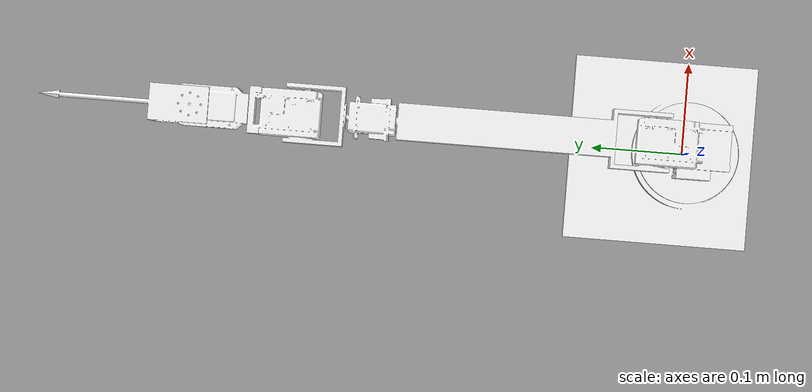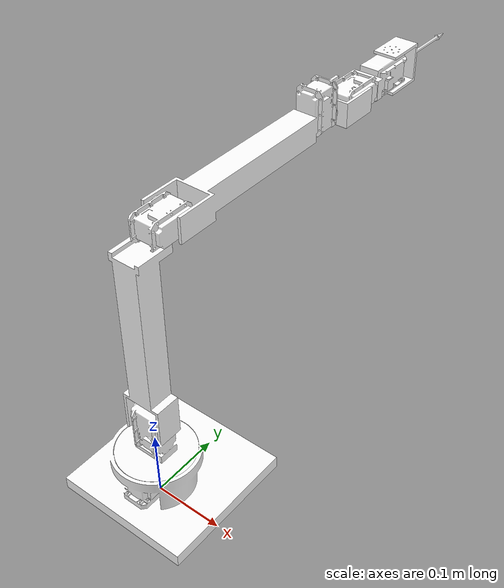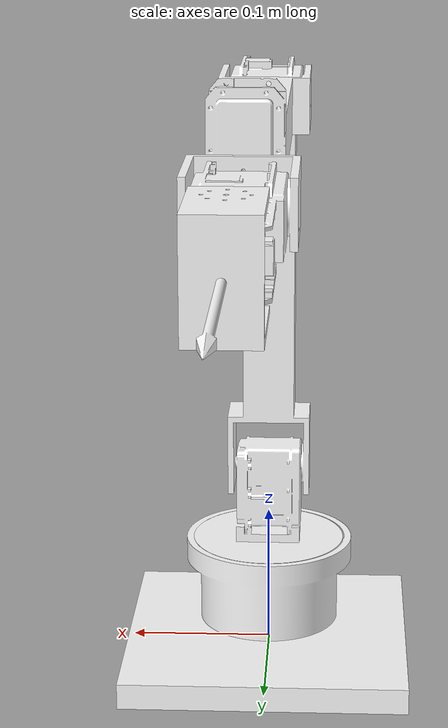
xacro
<?xml version="1.0" ?>

<robot name="mrm" xmlns:xacro="http://www.ros.org/wiki/xacro">

  <!-- BGN - Include -->

  <xacro:include filename="$(find mx106)/urdf/links_joints.xacro" />
  <!-- END - Include -->

  <!-- BGN - Robot description  -->

 <material name="white">
   <color rgba="1 1 1 1"/>
 </material>

  <m_link_mesh name="Base"
              origin_rpy="1.57 0 0" origin_xyz="0 0 0"
              mass="157.633"
              ixx="13.235" ixy="0" ixz="0"
              iyy="13.235" iyz="0"
              izz="9.655"
              meshfile="package://mx106/meshes/0base.stl"
              meshscale="0.001 0.001 0.001" />

  <m_joint name="Rotate" type="revolute"
           axis_xyz="0 0 1"
           origin_rpy="0 0 0" origin_xyz="0 0 0.0753"
           parent="Base" child="link_01"
           limit_e="1000" limit_l="-3.14" limit_u="3.14" limit_v="0.5" />

  <m_link_mesh name="link_01"
              origin_rpy="1.57 0 0" origin_xyz="0 0 0"
              mass="157.633"
              ixx="13.235" ixy="0" ixz="0"
              iyy="13.235" iyz="0"
              izz="9.655"
              meshfile="package://mx106/meshes/1rotate.stl"
              meshscale="0.001 0.001 0.001" />

    <m_joint name="Rotate1" type="revolute"
           axis_xyz="1 0 0"
           origin_rpy="0 0 0" origin_xyz="0 0 0.0616"
           parent="link_01" child="link_02"
           limit_e="1000" limit_l="-3.14" limit_u="3.14" limit_v="0.5" />

  <m_link_mesh name="link_02"
              origin_rpy="1.57 0 0" origin_xyz="0 0 -0.018"
              mass="157.633"
              ixx="13.235" ixy="0" ixz="0"
              iyy="13.235" iyz="0"
              izz="9.655"
              meshfile="package://mx106/meshes/2branch.stl"
              meshscale="0.001 0.001 0.001" />

    <m_joint name="Rotate2" type="revolute"
           axis_xyz="1 0 0"
           origin_rpy="0 0 0" origin_xyz="0 0.062 0.2761"
           parent="link_02" child="link_03"
           limit_e="1000" limit_l="-3.14" limit_u="3.14" limit_v="0.5" />

  <m_link_mesh name="link_03"
              origin_rpy="1.57 0 0" origin_xyz="0 -0.018 -0.018"
              mass="157.633"
              ixx="13.235" ixy="0" ixz="0"
              iyy="13.235" iyz="0"
              izz="9.655"
              meshfile="package://mx106/meshes/3branch.stl"
              meshscale="0.001 0.001 0.001" />

    <m_joint name="Rotate3" type="revolute"
           axis_xyz="0 1 0"
           origin_rpy="0 0 0" origin_xyz="0 0.3006 0"
           parent="link_03" child="link_04"
           limit_e="1000" limit_l="-3.14" limit_u="3.14" limit_v="0.5" />

  <m_link_mesh name="link_04"
              origin_rpy="1.57 0 0" origin_xyz="0 0 -0.018"
              mass="157.633"
              ixx="13.235" ixy="0" ixz="0"
              iyy="13.235" iyz="0"
              izz="9.655"
              meshfile="package://mx106/meshes/4rotate.stl"
              meshscale="0.001 0.001 0.001" />

    <m_joint name="Rotate4" type="revolute"
           axis_xyz="1 0 0"
           origin_rpy="0 0 0" origin_xyz="0 0.0391 0"
           parent="link_04" child="link_05"
           limit_e="1000" limit_l="-3.14" limit_u="3.14" limit_v="0.5" />

  <m_link_mesh name="link_05"
              origin_rpy="1.57 0 0" origin_xyz="0 -0.0145 -0.023"
              mass="157.633"
              ixx="13.235" ixy="0" ixz="0"
              iyy="13.235" iyz="0"
              izz="9.655"
              meshfile="package://mx106/meshes/5axis.stl"
              meshscale="0.001 0.001 0.001" />

    <m_joint name="Rotate5" type="revolute"
           axis_xyz="0 0 1"
           origin_rpy="0 0 0" origin_xyz="0 0.1132 0"
           parent="link_05" child="link_06"
           limit_e="1000" limit_l="-3.14" limit_u="3.14" limit_v="0.5" />

  <m_link_mesh name="link_06"
              origin_rpy="1.57 0 0" origin_xyz="0 -0.018 -0.029"
              mass="157.633"
              ixx="13.235" ixy="0" ixz="0"
              iyy="13.235" iyz="0"
              izz="9.655"
              meshfile="package://mx106/meshes/6brush.stl"
              meshscale="0.001 0.001 0.001" />
  <!-- END - Robot description -->

  <gazebo>
    <plugin name="gazebo_ros_control" filename="libgazebo_ros_control.so">
    </plugin>
  </gazebo>

</robot>

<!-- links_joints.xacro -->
<robot xmlns:xacro="http://www.ros.org/wiki/xacro">

  <xacro:macro name="m_joint" params="name type axis_xyz origin_rpy origin_xyz parent child limit_e limit_l limit_u limit_v">
    <joint name="${name}" type="${type}">
      <axis xyz="${axis_xyz}" />
      <limit effort="${limit_e}" lower="${limit_l}" upper="${limit_u}" velocity="${limit_v}" />
      <origin rpy="${origin_rpy}" xyz="${origin_xyz}" />
      <parent link="${parent}" />
      <child link="${child}" />
    </joint>
    <transmission name="trans_${name}">
      <type>transmission_interface/SimpleTransmission</type>
      <joint name="${name}">
        <hardwareInterface>hardware_interface/EffortJointInterface</hardwareInterface>
      </joint>
      <actuator name="motor_${name}">
        <hardwareInterface>hardware_interface/EffortJointInterface</hardwareInterface>
        <mechanicalReduction>1</mechanicalReduction>
      </actuator>
    </transmission>
  </xacro:macro>

  <xacro:macro name="m_link_cylinder" params="name origin_xyz origin_rpy radius length mass ixx ixy ixz iyy iyz izz">
    <link name="${name}">
      <inertial>
        <mass value="${mass}" />
        <origin rpy="${origin_rpy}" xyz="${origin_xyz}" />
        <inertia ixx="${ixx}" ixy="${ixy}" ixz="${ixz}" iyy="${iyy}" iyz="${iyz}" izz="${izz}" />
      </inertial>
      <collision>
        <origin rpy="${origin_rpy}" xyz="${origin_xyz}" />
        <geometry>
          <cylinder radius="${radius}" length="${length}" />
        </geometry>
      </collision>
      <visual>
        <origin rpy="${origin_rpy}" xyz="${origin_xyz}" />
        <geometry>
          <cylinder radius="${radius}" length="${length}" />
        </geometry>
      </visual>
    </link>
  </xacro:macro>

  <xacro:macro name="m_link_box" params="name origin_xyz origin_rpy size mass ixx ixy ixz iyy iyz izz">
    <link name="${name}">
      <inertial>
        <mass value="${mass}" />
        <origin rpy="${origin_rpy}" xyz="${origin_xyz}" />
        <inertia ixx="${ixx}" ixy="${ixy}" ixz="${ixz}" iyy="${iyy}" iyz="${iyz}" izz="${izz}" />
      </inertial>
      <collision>
        <origin rpy="${origin_rpy}" xyz="${origin_xyz}" />
        <geometry>
          <box size="${size}" />
        </geometry>
      </collision>
      <visual>
        <origin rpy="${origin_rpy}" xyz="${origin_xyz}" />
        <geometry>
          <box size="${size}" />
        </geometry>
      </visual>
    </link>
  </xacro:macro>

  <xacro:macro name="m_link_mesh" params="name origin_xyz origin_rpy meshfile meshscale mass ixx ixy ixz iyy iyz izz ">
    <link name="${name}">
      <inertial>
        <mass value="${mass}" />
        <origin rpy="${origin_rpy}" xyz="${origin_xyz}" />
        <inertia ixx="${ixx}" ixy="${ixy}" ixz="${ixz}" iyy="${iyy}" iyz="${iyz}" izz="${izz}" />
      </inertial>
      <collision>
        <origin rpy="${origin_rpy}" xyz="${origin_xyz}" />
        <geometry>
          <mesh filename="${meshfile}" scale="${meshscale}"/>
        </geometry>
      </collision>
      <visual>
        <origin rpy="${origin_rpy}" xyz="${origin_xyz}" />
        <geometry>
          <mesh filename="${meshfile}" scale="${meshscale}"/>
        </geometry>
        <material name="white"/>
      </visual>
    </link>
  </xacro:macro>

</robot>
